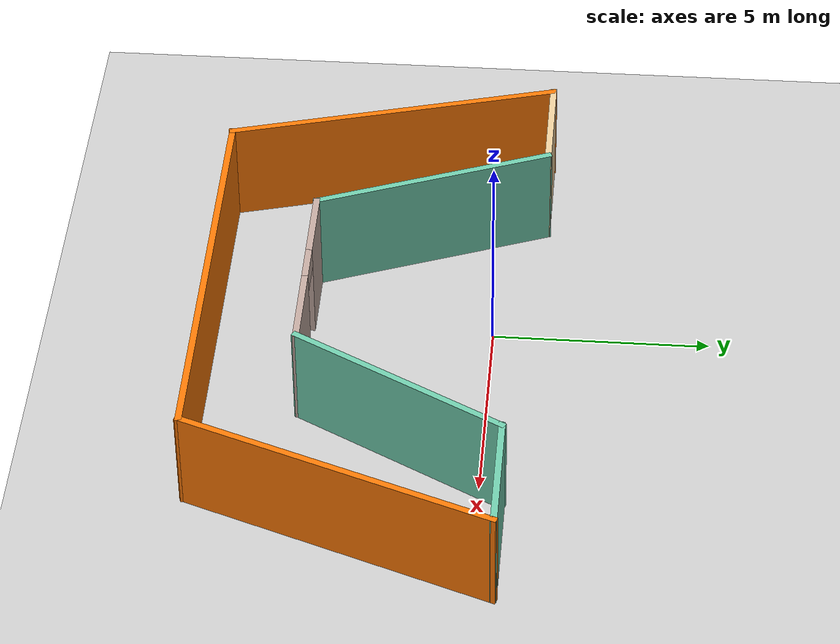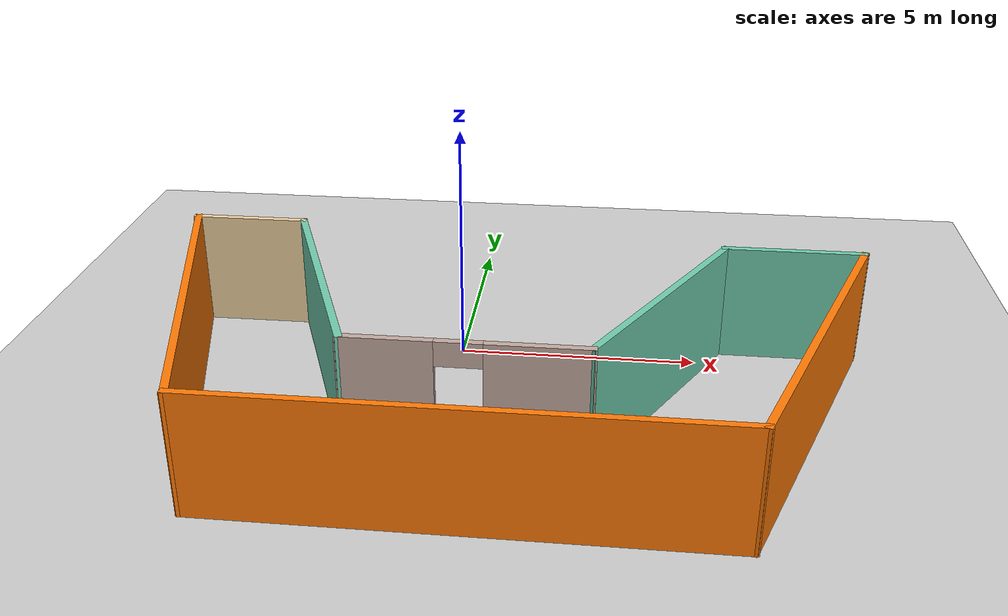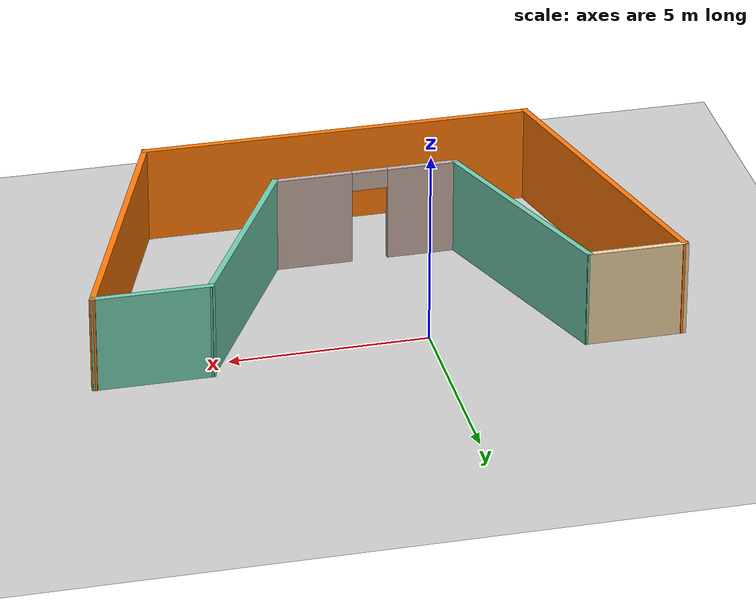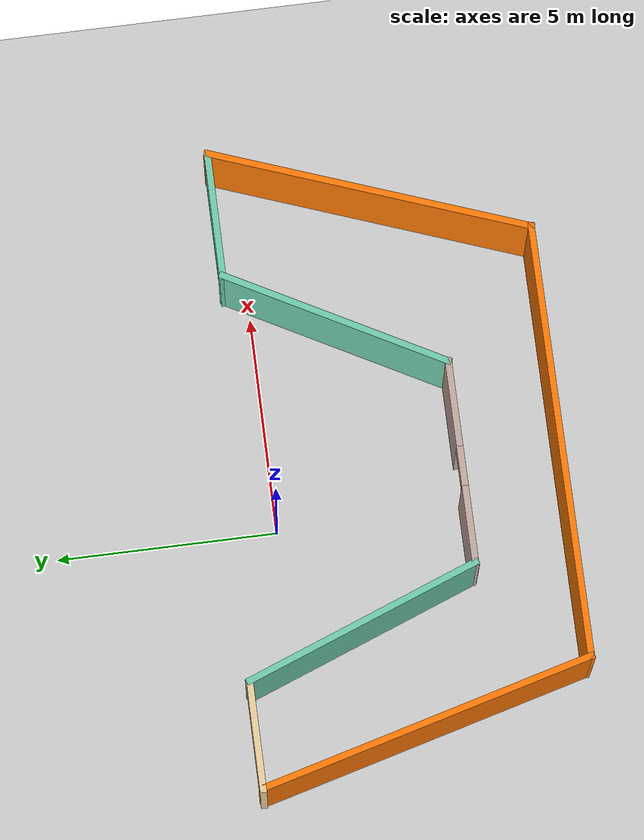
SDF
<sdf version="1.6">
 <world name="default">
  <light name="sun" type="directional">
   <pose>0 0 10 0 -0 0</pose>
   <diffuse>0.8 0.8 0.8 1</diffuse>
   <specular>0.2 0.2 0.2 1</specular>
   <attenuation>
    <range>1000</range>
    <constant>0.9</constant>
    <linear>0.01</linear>
    <quadratic>0.001</quadratic>
   </attenuation>
   <direction>-0.5 0.1 -0.9</direction>
  </light>
  <model name="ground_plane">
   <static>1</static>
   <link name="link">
    <collision name="collision">
     <geometry><plane><normal>0 0 1</normal><size>100 100</size></plane></geometry>
     <surface>
      <contact><collide_bitmask>65535</collide_bitmask></contact>
      <friction><ode><mu>100</mu><mu2>50</mu2></ode></friction>
     </surface>
    </collision>
    <visual name="visual">
     <cast_shadows>0</cast_shadows>
     <geometry><plane><normal>0 0 1</normal><size>100 100</size></plane></geometry>
     <material>
      <script><uri>file://media/materials/scripts/gazebo.material</uri><name>Gazebo/Grey</name></script>
     </material>
    </visual>
   </link>
  </model>
  <gravity>0 0 -9.8</gravity>
  <magnetic_field>6e-06 2.3e-05 -4.2e-05</magnetic_field>
  <atmosphere type="adiabatic"/>
  <physics name="default_physics" default="0" type="ode">
   <max_step_size>0.001</max_step_size>
   <real_time_factor>1</real_time_factor>
   <real_time_update_rate>1000</real_time_update_rate>
  </physics>
  <scene><ambient>0.4 0.4 0.4 1</ambient><background>0.7 0.7 0.7 1</background><shadows>1</shadows></scene>
  <spherical_coordinates>
   <surface_model>EARTH_WGS84</surface_model>
   <latitude_deg>0</latitude_deg>
   <longitude_deg>0</longitude_deg>
   <elevation>0</elevation>
   <heading_deg>0</heading_deg>
  </spherical_coordinates>
  <model name="V_building">
   <pose>1.14457 -2.70722 0 0 -0 0</pose>
   <link name="Wall_2">
    <collision name="Wall_2_Collision">
     <geometry><box><size>7.93758 0.15 2.5</size></box></geometry>
     <pose>0 0 1.25 0 -0 0</pose>
    </collision>
    <visual name="Wall_2_Visual">
     <pose>0 0 1.25 0 -0 0</pose>
     <geometry><box><size>7.93758 0.15 2.5</size></box></geometry>
     <material>
      <script><uri>file://media/materials/scripts/gazebo.material</uri><name>Gazebo/Grey</name></script>
      <ambient>0.996078 0.47451 0.0196078 1</ambient>
     </material>
     <meta><layer>0</layer></meta>
    </visual>
    <pose>-6.2139 -0.000288 0 0 0 -1.30875</pose>
   </link>
   <link name="Wall_3">
    <collision name="Wall_3_Collision">
     <geometry><box><size>10 0.15 2.5</size></box></geometry>
     <pose>0 0 1.25 0 -0 0</pose>
    </collision>
    <visual name="Wall_3_Visual">
     <pose>0 0 1.25 0 -0 0</pose>
     <geometry><box><size>10 0.15 2.5</size></box></geometry>
     <material>
      <script><uri>file://media/materials/scripts/gazebo.material</uri><name>Gazebo/Grey</name></script>
      <ambient>0.996078 0.47451 0.0196078 1</ambient>
     </material>
     <meta><layer>0</layer></meta>
    </visual>
    <pose>-0.280203 -3.76116 0 0 -0 0</pose>
   </link>
   <link name="Wall_4">
    <collision name="Wall_4_Collision">
     <geometry><box><size>7.60822 0.15 2.5</size></box></geometry>
     <pose>0 0 1.25 0 -0 0</pose>
    </collision>
    <visual name="Wall_4_Visual">
     <pose>0 0 1.25 0 -0 0</pose>
     <geometry><box><size>7.60822 0.15 2.5</size></box></geometry>
     <material>
      <script><uri>file://media/materials/scripts/gazebo.material</uri><name>Gazebo/Grey</name></script>
      <ambient>0.996078 0.47451 0.0196078 1</ambient>
     </material>
     <meta><layer>0</layer></meta>
    </visual>
    <pose>5.93175 -0.261158 0 0 -0 1.21844</pose>
   </link>
   <link name="Wall_5">
    <collision name="Wall_5_Collision">
     <geometry><box><size>3 0.15 2.5</size></box></geometry>
     <pose>0 0 1.25 0 -0 0</pose>
    </collision>
    <visual name="Wall_5_Visual">
     <pose>0 0 1.25 0 -0 0</pose>
     <geometry><box><size>3 0.15 2.5</size></box></geometry>
     <material>
      <script><uri>file://media/materials/scripts/gazebo.material</uri><name>Gazebo/Grey</name></script>
      <ambient>0.435294 0.796078 0.67451 1</ambient>
     </material>
     <meta><layer>0</layer></meta>
    </visual>
    <pose>5.77632 3.23884 0 0 -0 3.14159</pose>
   </link>
   <link name="Wall_6">
    <collision name="Wall_6_Collision">
     <geometry><box><size>5.55255 0.15 2.5</size></box></geometry>
     <pose>0 0 1.25 0 -0 0</pose>
    </collision>
    <visual name="Wall_6_Visual">
     <pose>0 0 1.25 0 -0 0</pose>
     <geometry><box><size>5.55255 0.15 2.5</size></box></geometry>
     <material>
      <script><uri>file://media/materials/scripts/gazebo.material</uri><name>Gazebo/Grey</name></script>
      <ambient>0.435294 0.796078 0.67451 1</ambient>
     </material>
     <meta><layer>0</layer></meta>
    </visual>
    <pose>3.08175 0.863842 0 0 0 -2.06738</pose>
   </link>
   <link name="Wall_7">
    <pose>-0.505203 -1.51116 0 0 -0 3.14159</pose>
    <visual name="Wall_7_Visual_0">
     <pose>-1.35815 0 1.25 0 -0 0</pose>
     <geometry><box><size>2.0337 0.15 2.5</size></box></geometry>
     <material>
      <script><uri>file://media/materials/scripts/gazebo.material</uri><name>Gazebo/Grey</name></script>
      <ambient>0.760784 0.662745 0.627451 1</ambient>
     </material>
     <meta><layer>0</layer></meta>
    </visual>
    <collision name="Wall_7_Collision_0">
     <geometry><box><size>2.0337 0.15 2.5</size></box></geometry>
     <pose>-1.35815 0 1.25 0 -0 0</pose>
    </collision>
    <visual name="Wall_7_Visual_1">
     <pose>1.46685 0 1.25 0 -0 0</pose>
     <geometry><box><size>1.8163 0.15 2.5</size></box></geometry>
     <material>
      <script><uri>file://media/materials/scripts/gazebo.material</uri><name>Gazebo/Grey</name></script>
      <ambient>0.760784 0.662745 0.627451 1</ambient>
     </material>
     <meta><layer>0</layer></meta>
    </visual>
    <collision name="Wall_7_Collision_1">
     <geometry><box><size>1.8163 0.15 2.5</size></box></geometry>
     <pose>1.46685 0 1.25 0 -0 0</pose>
    </collision>
    <visual name="Wall_7_Visual_2">
     <pose>0.108696 0 2.25 0 -0 0</pose>
     <geometry><box><size>0.9 0.15 0.5</size></box></geometry>
     <material>
      <script><uri>file://media/materials/scripts/gazebo.material</uri><name>Gazebo/Grey</name></script>
      <ambient>0.760784 0.662745 0.627451 1</ambient>
     </material>
     <meta><layer>0</layer></meta>
    </visual>
    <collision name="Wall_7_Collision_2">
     <geometry><box><size>0.9 0.15 0.5</size></box></geometry>
     <pose>0.108696 0 2.25 0 -0 0</pose>
    </collision>
   </link>
   <link name="Wall_8">
    <collision name="Wall_8_Collision">
     <geometry><box><size>5.79456 0.15 2.5</size></box></geometry>
     <pose>0 0 1.25 0 -0 0</pose>
    </collision>
    <visual name="Wall_8_Visual">
     <pose>0 0 1.25 0 -0 0</pose>
     <geometry><box><size>5.79456 0.15 2.5</size></box></geometry>
     <material>
      <script><uri>file://media/materials/scripts/gazebo.material</uri><name>Gazebo/Grey</name></script>
      <ambient>0.435294 0.796078 0.67451 1</ambient>
     </material>
     <meta><layer>0</layer></meta>
    </visual>
    <pose>-3.8139 1.12471 0 0 -0 1.93628</pose>
   </link>
   <link name="Wall_9">
    <collision name="Wall_9_Collision">
     <geometry><box><size>2.55 0.15 2.5</size></box></geometry>
     <pose>0 0 1.25 0 -0 0</pose>
    </collision>
    <visual name="Wall_9_Visual">
     <pose>0 0 1.25 0 -0 0</pose>
     <geometry><box><size>2.55 0.15 2.5</size></box></geometry>
     <material>
      <script><uri>file://media/materials/scripts/gazebo.material</uri><name>Gazebo/Grey</name></script>
      <ambient>0.921569 0.807843 0.615686 1</ambient>
     </material>
     <meta><layer>0</layer></meta>
    </visual>
    <pose>-6.03999 3.76058 0 0 -0 3.14159</pose>
   </link>
   <static>1</static>
  </model>
  <plugin filename="libcollision_map_creator.so" name="collision_map_creator"/>
 </world>
</sdf>
